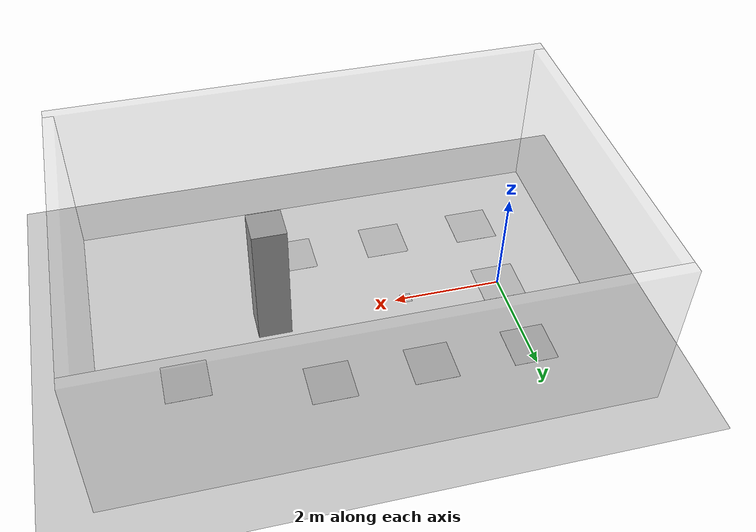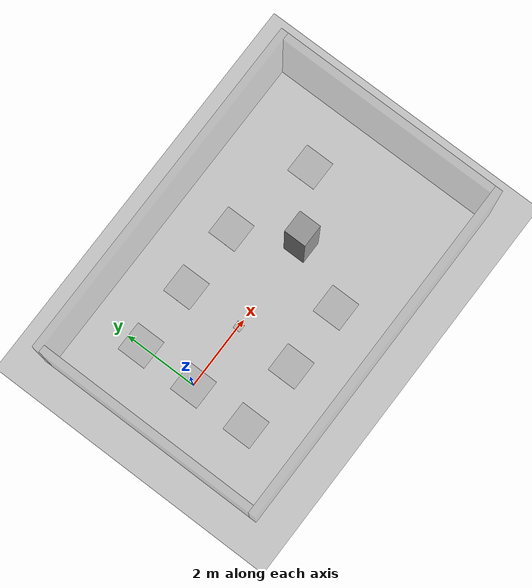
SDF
<sdf version="1.7">
 <world name="default">
  <light name="sun" type="directional">
   <cast_shadows>0</cast_shadows>
   <pose>0 0 10 0 -0 0</pose>
   <diffuse>0.8 0.8 0.8 1</diffuse>
   <specular>0.2 0.2 0.2 1</specular>
   <attenuation>
    <range>1000</range>
    <constant>0.9</constant>
    <linear>0.01</linear>
    <quadratic>0.001</quadratic>
   </attenuation>
   <direction>-0.5 0.1 -0.9</direction>
   <spot><inner_angle>0</inner_angle><outer_angle>0</outer_angle><falloff>0</falloff></spot>
  </light>
  <model name="ground_plane">
   <static>1</static>
   <link name="link">
    <collision name="collision">
     <geometry><plane><normal>0 0 1</normal><size>100 100</size></plane></geometry>
     <surface><friction><ode><mu>100</mu><mu2>50</mu2></ode></friction></surface>
    </collision>
    <visual name="visual">
     <cast_shadows>0</cast_shadows>
     <geometry><plane><normal>0 0 1</normal><size>100 100</size></plane></geometry>
     <material>
      <script><uri>file://media/materials/scripts/gazebo.material</uri><name>Gazebo/Grey</name></script>
     </material>
    </visual>
   </link>
  </model>
  <gravity>0 0 -9.8</gravity>
  <magnetic_field>6e-06 2.3e-05 -4.2e-05</magnetic_field>
  <atmosphere type="adiabatic"/>
  <physics type="ode">
   <max_step_size>0.005</max_step_size>
   <real_time_factor>1</real_time_factor>
   <real_time_update_rate>500</real_time_update_rate>
  </physics>
  <scene><ambient>0.4 0.4 0.4 1</ambient><background>0.7 0.7 0.7 1</background><shadows>0</shadows></scene>
  <spherical_coordinates>
   <surface_model>EARTH_WGS84</surface_model>
   <latitude_deg>0</latitude_deg>
   <longitude_deg>0</longitude_deg>
   <elevation>0</elevation>
   <heading_deg>0</heading_deg>
  </spherical_coordinates>
  <model name="A_H">
   <static>1</static>
   <link name="link">
    <collision name="collision">
     <geometry><plane><normal>0 0 1</normal><size>0.8 0.8</size></plane></geometry>
     <surface><friction><ode><mu>100</mu><mu2>50</mu2></ode></friction></surface>
    </collision>
    <visual name="visual">
     <cast_shadows>0</cast_shadows>
     <geometry><plane><normal>0 0 1</normal><size>0.8 0.8</size></plane></geometry>
     <material>
      <script>
       <uri>model://A_H/materials/scripts</uri>
       <uri>model://A_H/materials/textures/</uri>
       <name>A_H/A_H</name>
      </script>
     </material>
    </visual>
   </link>
   <pose>0 0 0.02 0 0 -1.5708</pose>
  </model>
  <model name="A_H_0">
   <static>1</static>
   <link name="link">
    <collision name="collision">
     <geometry><plane><normal>0 0 1</normal><size>0.8 0.8</size></plane></geometry>
     <surface><friction><ode><mu>100</mu><mu2>50</mu2></ode></friction></surface>
    </collision>
    <visual name="visual">
     <cast_shadows>0</cast_shadows>
     <geometry><plane><normal>0 0 1</normal><size>0.8 0.8</size></plane></geometry>
     <material>
      <script>
       <uri>model://A_H/materials/scripts</uri>
       <uri>model://A_H/materials/textures/</uri>
       <name>A_H/A_H</name>
      </script>
     </material>
    </visual>
   </link>
   <pose>0 1.6 0.02 0 0 -1.5708</pose>
  </model>
  <model name="A_H_1">
   <static>1</static>
   <link name="link">
    <collision name="collision">
     <geometry><plane><normal>0 0 1</normal><size>0.8 0.8</size></plane></geometry>
     <surface><friction><ode><mu>100</mu><mu2>50</mu2></ode></friction></surface>
    </collision>
    <visual name="visual">
     <cast_shadows>0</cast_shadows>
     <geometry><plane><normal>0 0 1</normal><size>0.8 0.8</size></plane></geometry>
     <material>
      <script>
       <uri>model://A_H/materials/scripts</uri>
       <uri>model://A_H/materials/textures/</uri>
       <name>A_H/A_H</name>
      </script>
     </material>
    </visual>
   </link>
   <pose>0 -1.6 0.02 0 0 -1.5708</pose>
  </model>
  <model name="A_obj0">
   <static>1</static>
   <link name="link">
    <collision name="collision">
     <geometry><plane><normal>0 0 1</normal><size>0.8 0.8</size></plane></geometry>
     <surface><friction><ode><mu>100</mu><mu2>50</mu2></ode></friction></surface>
    </collision>
    <visual name="visual">
     <cast_shadows>0</cast_shadows>
     <geometry><plane><normal>0 0 1</normal><size>0.8 0.8</size></plane></geometry>
     <material>
      <script>
       <uri>model://A_obj0/materials/scripts</uri>
       <uri>model://A_obj0/materials/textures/</uri>
       <name>A_obj0/A_obj0</name>
      </script>
     </material>
    </visual>
   </link>
   <pose>1.8 1.6 0.02 0 0 -1.5708</pose>
  </model>
  <model name="A_obj1">
   <static>1</static>
   <link name="link">
    <collision name="collision">
     <geometry><plane><normal>0 0 1</normal><size>0.8 0.8</size></plane></geometry>
     <surface><friction><ode><mu>100</mu><mu2>50</mu2></ode></friction></surface>
    </collision>
    <visual name="visual">
     <cast_shadows>0</cast_shadows>
     <geometry><plane><normal>0 0 1</normal><size>0.8 0.8</size></plane></geometry>
     <material>
      <script>
       <uri>model://A_obj1/materials/scripts</uri>
       <uri>model://A_obj1/materials/textures/</uri>
       <name>A_obj1/A_obj1</name>
      </script>
     </material>
    </visual>
   </link>
   <pose>1.8 -1.6 0.02 0 0 -1.5708</pose>
  </model>
  <model name="A_obj2">
   <static>1</static>
   <link name="link">
    <collision name="collision">
     <geometry><plane><normal>0 0 1</normal><size>0.8 0.8</size></plane></geometry>
     <surface><friction><ode><mu>100</mu><mu2>50</mu2></ode></friction></surface>
    </collision>
    <visual name="visual">
     <cast_shadows>0</cast_shadows>
     <geometry><plane><normal>0 0 1</normal><size>0.8 0.8</size></plane></geometry>
     <material>
      <script>
       <uri>model://A_obj2/materials/scripts</uri>
       <uri>model://A_obj2/materials/textures/</uri>
       <name>A_obj2/A_obj2</name>
      </script>
     </material>
    </visual>
   </link>
   <pose>3.6 1.6 0.02 0 0 -1.5708</pose>
  </model>
  <model name="A_obj3">
   <static>1</static>
   <link name="link">
    <collision name="collision">
     <geometry><plane><normal>0 0 1</normal><size>0.8 0.8</size></plane></geometry>
     <surface><friction><ode><mu>100</mu><mu2>50</mu2></ode></friction></surface>
    </collision>
    <visual name="visual">
     <cast_shadows>0</cast_shadows>
     <geometry><plane><normal>0 0 1</normal><size>0.8 0.8</size></plane></geometry>
     <material>
      <script>
       <uri>model://A_obj3/materials/scripts</uri>
       <uri>model://A_obj3/materials/textures/</uri>
       <name>A_obj3/A_obj3</name>
      </script>
     </material>
    </visual>
   </link>
   <pose>3.6 -1.6 0.02 0 0 -1.5708</pose>
  </model>
  <model name="A_obj4">
   <static>1</static>
   <link name="link">
    <collision name="collision">
     <geometry><plane><normal>0 0 1</normal><size>0.8 0.8</size></plane></geometry>
     <surface><friction><ode><mu>100</mu><mu2>50</mu2></ode></friction></surface>
    </collision>
    <visual name="visual">
     <cast_shadows>0</cast_shadows>
     <geometry><plane><normal>0 0 1</normal><size>0.8 0.8</size></plane></geometry>
     <material>
      <script>
       <uri>model://A_obj4/materials/scripts</uri>
       <uri>model://A_obj4/materials/textures/</uri>
       <name>A_obj4/A_obj4</name>
      </script>
     </material>
    </visual>
   </link>
   <pose>6 1 0.02 0 0 -1.5708</pose>
  </model>
  <model name="A_aqr">
   <static>1</static>
   <link name="link">
    <collision name="collision">
     <geometry><plane><normal>0 0 1</normal><size>0.2 0.2</size></plane></geometry>
     <surface><friction><ode><mu>100</mu><mu2>50</mu2></ode></friction></surface>
    </collision>
    <visual name="visual">
     <cast_shadows>0</cast_shadows>
     <geometry><plane><normal>0 0 1</normal><size>0.2 0.2</size></plane></geometry>
     <material>
      <script>
       <uri>model://A_aqr/materials/scripts</uri>
       <uri>model://A_aqr/materials/textures/</uri>
       <name>A_aqr/A_aqr</name>
      </script>
     </material>
    </visual>
   </link>
   <pose>1.8 0 0.02 0 -0 0</pose>
  </model>
  <model name="unit_box">
   <static>1</static>
   <pose>4.3 0 1.2 -0 0 -0</pose>
   <link name="link">
    <inertial>
     <mass>1</mass>
     <inertia>
      <ixx>0.166667</ixx>
      <ixy>0</ixy>
      <ixz>0</ixz>
      <iyy>0.166667</iyy>
      <iyz>0</iyz>
      <izz>0.166667</izz>
     </inertia>
    </inertial>
    <collision name="collision"><geometry><box><size>0.6 0.6 2.4</size></box></geometry></collision>
    <visual name="visual">
     <geometry><box><size>0.6 0.6 2.4</size></box></geometry>
     <material>
      <script><name>Gazebo/Grey</name><uri>file://media/materials/scripts/gazebo.material</uri></script>
     </material>
    </visual>
   </link>
  </model>
  <model name="Wall_0">
   <pose>-1.6 0 0 0 -0 0</pose>
   <link name="Wall_0">
    <collision name="Wall_0_Collision">
     <geometry><box><size>6 0.2 3</size></box></geometry>
     <pose>0 0 1.5 0 -0 0</pose>
    </collision>
    <visual name="Wall_0_Visual">
     <transparency>0.9</transparency>
     <pose>0 0 1.5 0 -0 0</pose>
     <geometry><box><size>6 0.2 3</size></box></geometry>
     <material>
      <script><uri>file://media/materials/scripts/gazebo.material</uri><name>Gazebo/Grey</name></script>
      <ambient>1 1 1 1</ambient>
     </material>
     <meta><layer>0</layer></meta>
    </visual>
    <pose>0 0 0 0 -0 1.5708</pose>
   </link>
   <static>1</static>
  </model>
  <model name="Wall_0_0">
   <pose>7.6 0 0 0 -0 0</pose>
   <link name="Wall_0">
    <collision name="Wall_0_Collision">
     <geometry><box><size>6 0.2 3</size></box></geometry>
     <pose>0 0 1.5 0 -0 0</pose>
    </collision>
    <visual name="Wall_0_Visual">
     <transparency>0.9</transparency>
     <pose>0 0 1.5 0 -0 0</pose>
     <geometry><box><size>6 0.2 3</size></box></geometry>
     <material>
      <script><uri>file://media/materials/scripts/gazebo.material</uri><name>Gazebo/Grey</name></script>
      <ambient>1 1 1 1</ambient>
     </material>
     <meta><layer>0</layer></meta>
    </visual>
    <pose>0 0 0 0 -0 1.5708</pose>
   </link>
   <static>1</static>
  </model>
  <model name="Wall_0_1">
   <pose>3 3.1 0 0 -0 1.5708</pose>
   <link name="Wall_0">
    <collision name="Wall_0_Collision">
     <geometry><box><size>9.4 0.2 3</size></box></geometry>
     <pose>0 0 1.5 0 -0 0</pose>
    </collision>
    <visual name="Wall_0_Visual">
     <transparency>0.9</transparency>
     <pose>0 0 1.5 0 -0 0</pose>
     <geometry><box><size>9.4 0.2 3</size></box></geometry>
     <material>
      <script><uri>file://media/materials/scripts/gazebo.material</uri><name>Gazebo/Grey</name></script>
      <ambient>1 1 1 1</ambient>
     </material>
     <meta><layer>0</layer></meta>
    </visual>
    <pose>0 0 0 0 -0 1.5708</pose>
   </link>
   <static>1</static>
  </model>
  <model name="Wall_0_2">
   <pose>3 -3.1 0 0 -0 1.5708</pose>
   <link name="Wall_0">
    <collision name="Wall_0_Collision">
     <geometry><box><size>9.4 0.2 3</size></box></geometry>
     <pose>0 0 1.5 0 -0 0</pose>
    </collision>
    <visual name="Wall_0_Visual">
     <transparency>0.9</transparency>
     <pose>0 0 1.5 0 -0 0</pose>
     <geometry><box><size>9.4 0.2 3</size></box></geometry>
     <material>
      <script><uri>file://media/materials/scripts/gazebo.material</uri><name>Gazebo/Grey</name></script>
      <ambient>1 1 1 1</ambient>
     </material>
     <meta><layer>0</layer></meta>
    </visual>
    <pose>0 0 0 0 -0 1.5708</pose>
   </link>
   <static>1</static>
  </model>
 </world>
</sdf>
